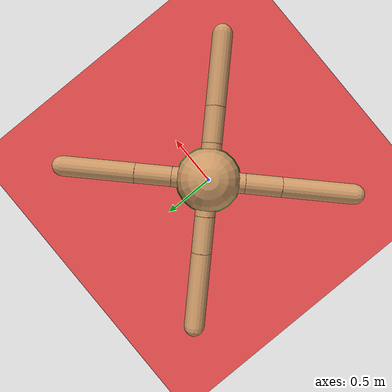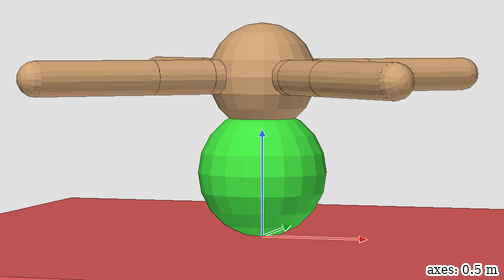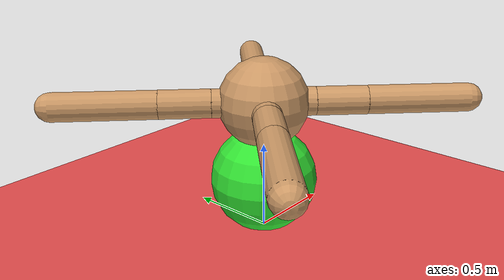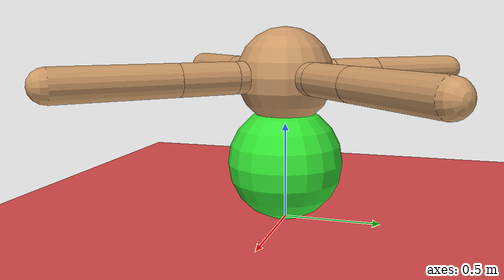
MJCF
<mujoco model="ant">
  <compiler angle="degree" coordinate="local" inertiafromgeom="true"/>
  <option integrator="RK4" timestep="0.01"/>
  <default>
    <joint armature="1" damping="1" limited="true"/>
    <geom conaffinity="1" condim="3" density="5.0" friction="0.5 0.5 0.5" margin="0.01" rgba="0.8 0.6 0.4 1"/>
  </default>
  <asset>
    <texture builtin="gradient" height="100" rgb1="1 1 1" rgb2="0 0 0" type="skybox" width="100"/>
    <texture builtin="flat" height="1278" mark="cross" markrgb="1 1 1" name="texgeom" random="0.01" rgb1="0.8 0.6 0.4" rgb2="0.8 0.6 0.4" type="cube" width="127"/>
    <texture builtin="checker" height="100" name="texplane" rgb1=".1 .2 .3" rgb2=".2 .3 .4" type="2d" width="100"/>
    <texture builtin="checker" height="100" name="texplane2" rgb1="1 1 1" rgb2=".2 .3 .4" type="2d" width="100"/>
    <material name="MatPlane" reflectance="0.5" shininess="1" specular="1" texrepeat="10 40" texture="texplane"/>
    <material name="MatPlane_2" reflectance="0.5" shininess="1" specular="1" texrepeat="5 5" texture="texplane2"/>
    <material name="geom" texture="texgeom" texuniform="true"/>
  </asset>
  <worldbody>
    <!-- test object -->

    <body name="agent_torso" pos="0 0 0.75">
      <camera name="track" mode="trackcom" pos="0 -3 0.3" xyaxes="1 0 0 0 0 1"/>
      <geom name="agent_torso_geom" pos="0 0 0" size="0.25" type="sphere" priority = "3"/>
      <joint armature="0" damping="0" limited="false" margin="0.01" name="root" pos="0 0 0" type="free"/>
      <body name="agent_front_left_leg" pos="0 0 0">
        <geom fromto="0.0 0.0 0.0 0.2 0.2 0.0" name="aux_1_geom" size="0.08" type="capsule" priority = "3"/>
        <body name="aux_1" pos="0.2 0.2 0">
          <joint axis="0 0 1" name="hip_1" pos="0.0 0.0 0.0" range="-30 30" type="hinge"/>
          <geom fromto="0.0 0.0 0.0 0.2 0.2 0.0" name="agent_left_leg_geom" size="0.08" type="capsule" priority = "3"/>
          <body pos="0.2 0.2 0">
            <joint axis="-1 1 0" name="ankle_1" pos="0.0 0.0 0.0" range="30 70" type="hinge"/>
            <geom fromto="0.0 0.0 0.0 0.4 0.4 0.0" name="agent_left_ankle_geom" size="0.08" type="capsule" priority = "3"/>
          </body>
        </body>
      </body>
      <body name="agent_front_right_leg" pos="0 0 0">
        <geom fromto="0.0 0.0 0.0 -0.2 0.2 0.0" name="aux_2_geom" size="0.08" type="capsule" priority = "3"/>
        <body name="aux_2" pos="-0.2 0.2 0">
          <joint axis="0 0 1" name="hip_2" pos="0.0 0.0 0.0" range="-30 30" type="hinge"/>
          <geom fromto="0.0 0.0 0.0 -0.2 0.2 0.0" name="agent_right_leg_geom" size="0.08" type="capsule" priority = "3"/>
          <body pos="-0.2 0.2 0">
            <joint axis="1 1 0" name="ankle_2" pos="0.0 0.0 0.0" range="-70 -30" type="hinge"/>
            <geom fromto="0.0 0.0 0.0 -0.4 0.4 0.0" name="agent_right_ankle_geom" size="0.08" type="capsule" priority = "3"/>
          </body>
        </body>
      </body>
      <body name="agent_back_leg" pos="0 0 0">
        <geom fromto="0.0 0.0 0.0 -0.2 -0.2 0.0" name="aux_3_geom" size="0.08" type="capsule" priority = "3"/>
        <body name="aux_3" pos="-0.2 -0.2 0">
          <joint axis="0 0 1" name="hip_3" pos="0.0 0.0 0.0" range="-30 30" type="hinge"/>
          <geom fromto="0.0 0.0 0.0 -0.2 -0.2 0.0" name="agent_back_leg_geom" size="0.08" type="capsule" priority = "3"/>
          <body pos="-0.2 -0.2 0">
            <joint axis="-1 1 0" name="ankle_3" pos="0.0 0.0 0.0" range="-70 -30" type="hinge"/>
            <geom fromto="0.0 0.0 0.0 -0.4 -0.4 0.0" name="agent_third_ankle_geom" size="0.08" type="capsule" priority = "3"/>
          </body>
        </body>
      </body>
      <body name="agent_right_back_leg" pos="0 0 0">
        <geom fromto="0.0 0.0 0.0 0.2 -0.2 0.0" name="aux_4_geom" size="0.08" type="capsule" priority = "3"/>
        <body name="aux_4" pos="0.2 -0.2 0">
          <joint axis="0 0 1" name="hip_4" pos="0.0 0.0 0.0" range="-30 30" type="hinge"/>
          <geom fromto="0.0 0.0 0.0 0.2 -0.2 0.0" name="agent_rightback_leg_geom" size="0.08" type="capsule" priority = "3"/>
          <body pos="0.2 -0.2 0">
            <joint axis="1 1 0" name="ankle_4" pos="0.0 0.0 0.0" range="30 70" type="hinge"/>
            <geom fromto="0.0 0.0 0.0 0.4 -0.4 0.0" name="agent_fourth_ankle_geom" size="0.08" type="capsule" priority = "3"/>
          </body>
        </body>
      </body>
    </body>

    <light cutoff="100" diffuse="1 1 1" dir="-0 0 -1.3" directional="true" exponent="1" pos="0 0 1.3" specular=".1 .1 .1"/>
    <geom name="midplane" pos="0 13 -0.5" conaffinity="1" rgba="0.9 0.3 0.3 1" friction="1 1 1" size="10 26 0.5" type="box" priority = "3"/>

    <geom name="coin_geom1" pos= "0 0 0.3" conaffinity="0" contype="0" type="sphere" size=".3" condim="3"  rgba="0.2 0.9 0.2 1" />

    <geom name="coin_geom2" conaffinity="0" contype="0" type="sphere" size=".3" condim="3"  pos="0 0 0.3" rgba="0.2 0.9 0.2 1" />

  </worldbody>
  <actuator>
    <motor ctrllimited="true" ctrlrange="-1.0 1.0" joint="hip_4" gear="150"/>
    <motor ctrllimited="true" ctrlrange="-1.0 1.0" joint="ankle_4" gear="150"/>
    <motor ctrllimited="true" ctrlrange="-1.0 1.0" joint="hip_1" gear="150"/>
    <motor ctrllimited="true" ctrlrange="-1.0 1.0" joint="ankle_1" gear="150"/>
    <motor ctrllimited="true" ctrlrange="-1.0 1.0" joint="hip_2" gear="150"/>
    <motor ctrllimited="true" ctrlrange="-1.0 1.0" joint="ankle_2" gear="150"/>
    <motor ctrllimited="true" ctrlrange="-1.0 1.0" joint="hip_3" gear="150"/>
    <motor ctrllimited="true" ctrlrange="-1.0 1.0" joint="ankle_3" gear="150"/>
  </actuator>
</mujoco>
